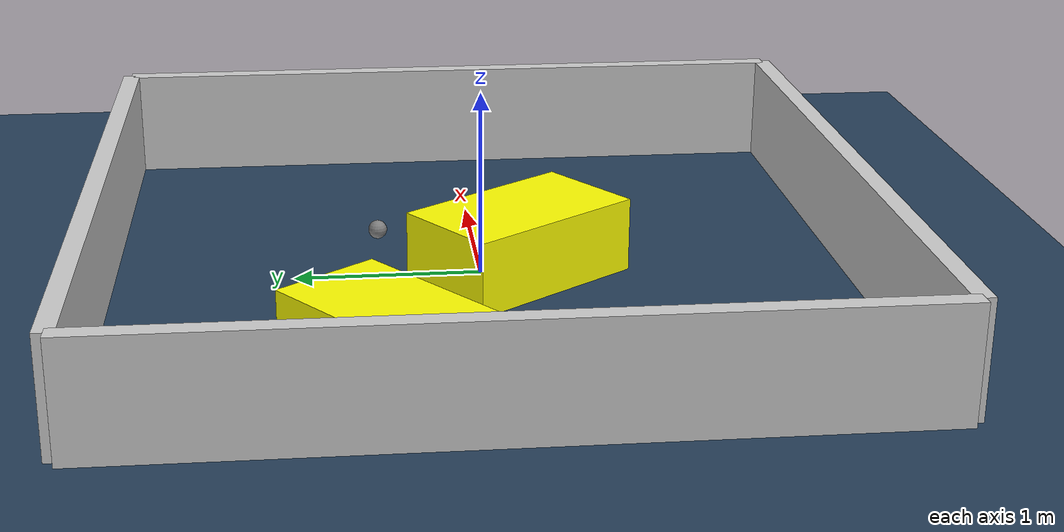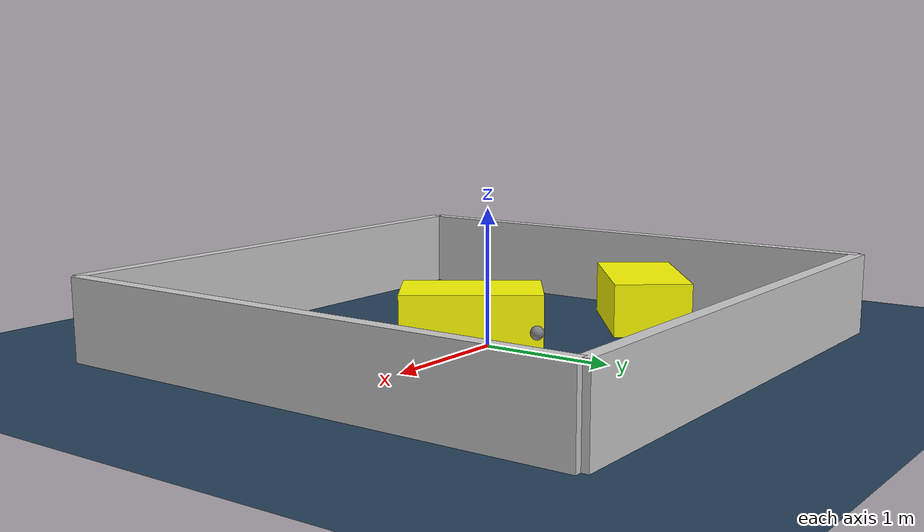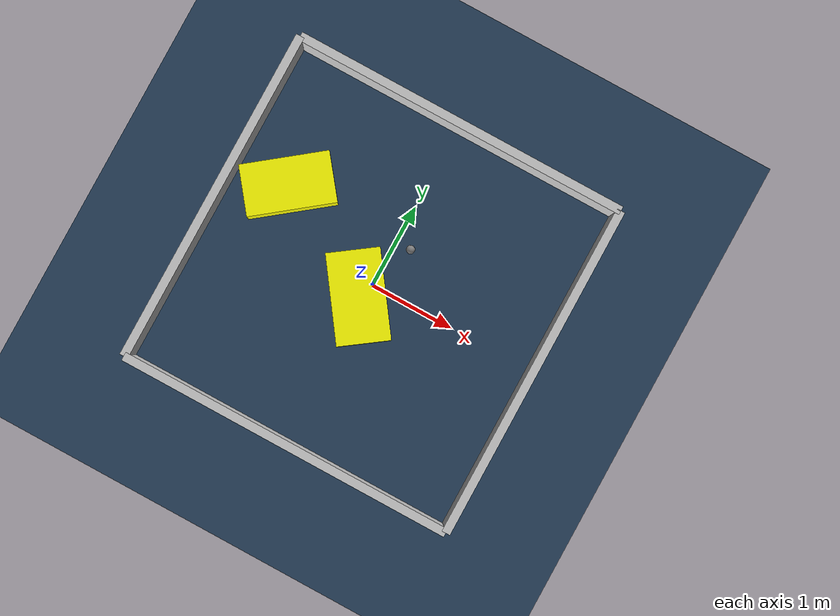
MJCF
<?xml version="1.0" ?>
<mujoco model="generated_environment">
  <option timestep="0.01" integrator="RK4" cone="elliptic"/>
  <default>
    <geom density="1"/>
  </default>
  <asset>
    <texture builtin="gradient" height="3072" rgb1="0.3 0.5 0.7" rgb2="0 0 0" type="skybox" width="512"/>
    <texture builtin="checker" height="300" mark="edge" markrgb="0.8 0.8 0.8" name="groundplane" rgb1="0.2 0.3 0.4" rgb2="0.1 0.2 0.3" type="2d" width="300"/>
    <material name="groundplane" reflectance="0.2" texrepeat="5 5" texture="groundplane" texuniform="true"/>
    <material name="robot" rgba="0.0 1.0 0.0 1"/>
  </asset>
  <worldbody>
    <light dir="0 0 -1" directional="true" pos="0 0 1.5"/>
    <geom condim="4" friction="1.0 0.005 0.001" material="groundplane" name="floor" size="0 0 0.05" type="plane"/>
    <body name="walls">
      <geom name="wall_1" condim="4" pos="-2.0 0.0 0.3" rgba="0.800000011920929 0.800000011920929 0.800000011920929 1.0" size="0.05 2.0 0.3" type="box"/>
      <geom name="wall_2" condim="4" pos="2.0 0.0 0.3" rgba="0.800000011920929 0.800000011920929 0.800000011920929 1.0" size="0.05 2.0 0.3" type="box"/>
      <geom name="wall_3" condim="4" pos="0.0 -2.0 0.3" rgba="0.800000011920929 0.800000011920929 0.800000011920929 1.0" size="2.0 0.05 0.3" type="box"/>
      <geom name="wall_4" condim="4" pos="0.0 2.0 0.3" rgba="0.800000011920929 0.800000011920929 0.800000011920929 1.0" size="2.0 0.05 0.3" type="box"/>
    </body>
    <body name="robot">
      <joint name="joint_x" type="slide" pos="0 0 0" axis="1 0 0"/>
      <joint name="joint_y" type="slide" pos="0 0 0" axis="0 1 0"/>
      <geom name="robot" type="sphere" pos="0.18146528684282237 0.5452280324335139 0.2" size="0.05" mass="5." friction="1.0 0.005 0.0001" condim="4"/>
      <site name="sensor_ball"/>
    </body>
    <body name="obstacle_1_movable">
      <geom name="obstacle_1_movable" condim="4" pos="-0.07327603892955104 -0.19771628375765604 0.2" euler="0 0 215.4595770188935" friction="1.0 0.005 0.001" rgba="1 1 0 1" size="0.30631826537464246 0.519544213441362 0.2" type="box" mass="0.1"/>
      <joint type="free"/>
    </body>
    <body name="obstacle_2_movable">
      <geom name="obstacle_2_movable" condim="4" pos="-1.3538021000861287 0.5258579949158775 0.2" euler="0 0 217.74113479531314" friction="1.0 0.005 0.001" rgba="1 1 0 1" size="0.5090091107670056 0.29298292273828175 0.2" type="box" mass="0.1"/>
      <joint type="free"/>
    </body>
  </worldbody>
  <actuator>
    <motor name="actuator_x" joint="joint_x" gear="1" ctrlrange="-1 1"/>
    <motor name="actuator_y" joint="joint_y" gear="1" ctrlrange="-1 1"/>
  </actuator>
</mujoco>
